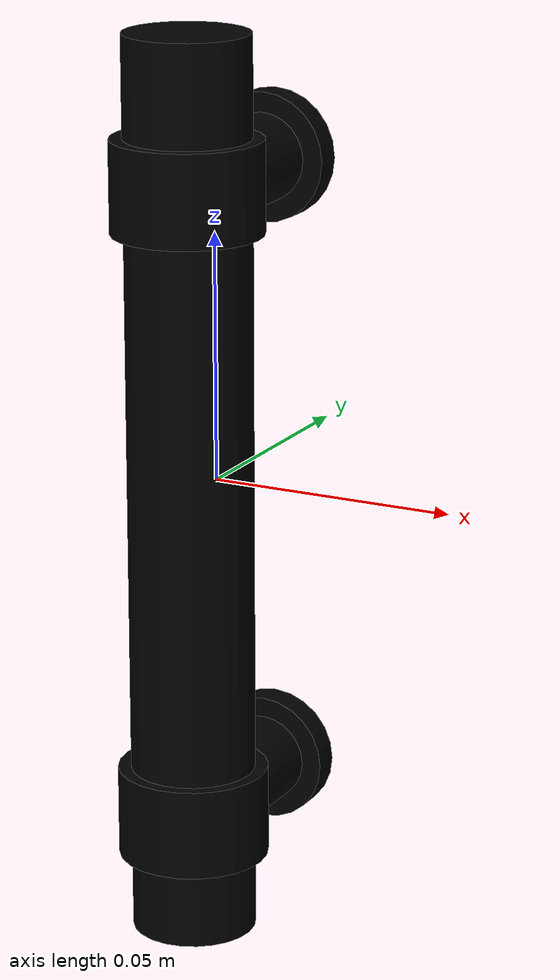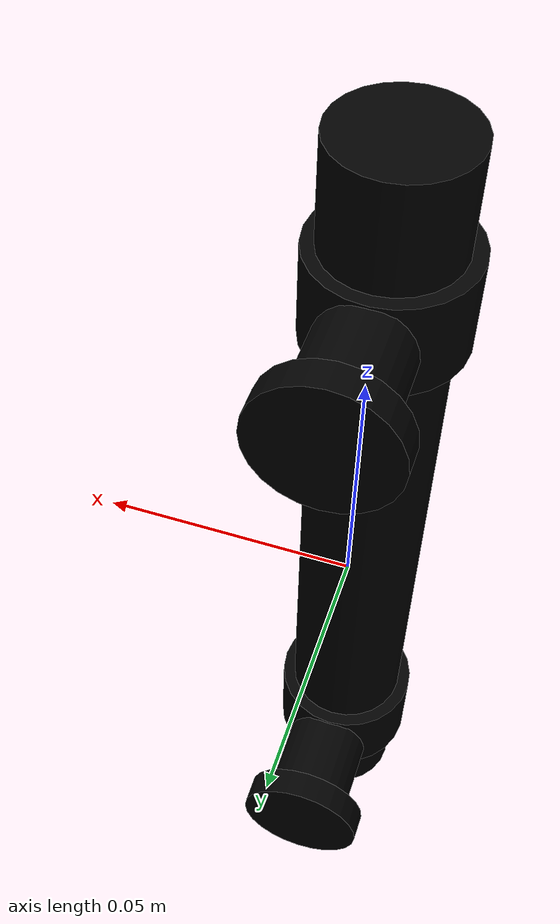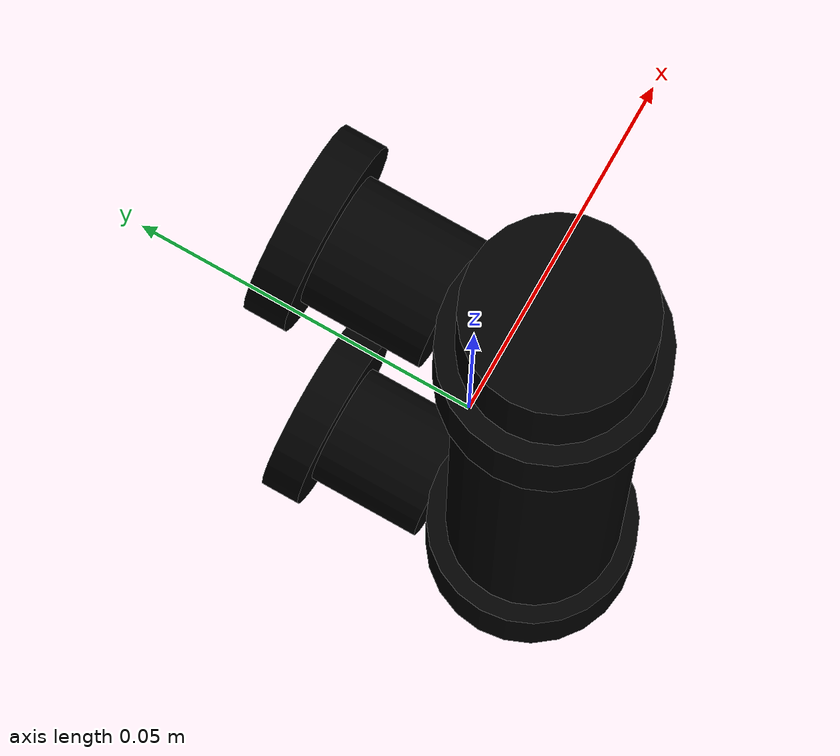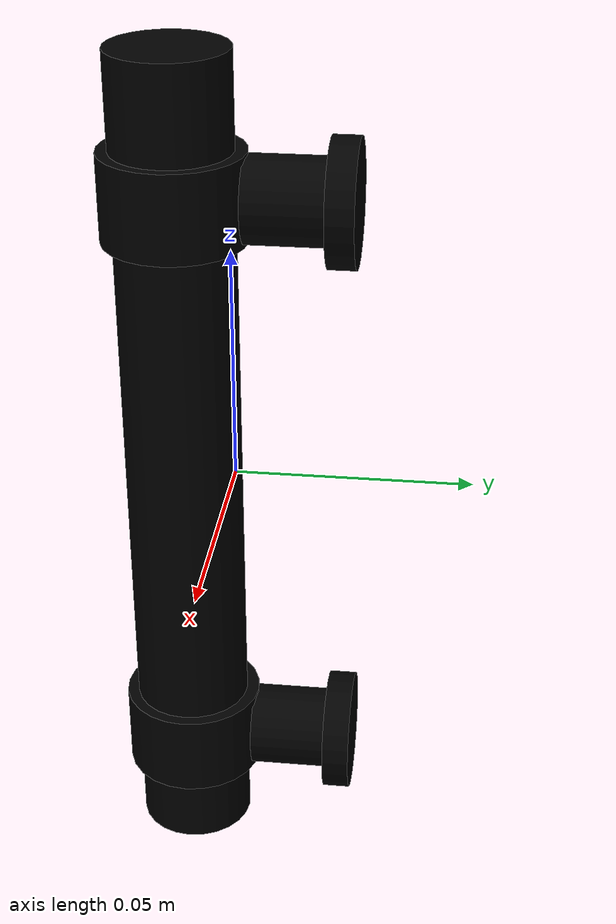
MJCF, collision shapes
<?xml version="1.0" ?>
<mujoco model="model">
    <compiler angle="radian"/>
    <asset>
        <mesh file="visuals/CabinetHandle019.obj" name="mesh"/>
        <texture file="visuals/T_BC001.png" name="tex" type="2d"/>
        <material name="mat" rgba="1 1 1 1.0" texture="tex" shininess="0.5" specular="0.5"/>
    </asset>
    <default>
        <default class="visual">
            <geom conaffinity="0" contype="0" group="1" type="mesh"/>
        </default>
        <default class="collision">
            <geom group="0" rgba="0 0 0 0"/>
        </default>
        <default class="spawn">
            <geom group="0" rgba="0 0 0 0" contype="0" conaffinity="0"/>
            <site group="0" rgba="0 0 0 0"/>
        </default>
    </default>
    <worldbody>
        <body>
            <body name="object">
                <geom mesh="mesh" type="mesh" solimp="0.998 0.998 0.001" solref="0.001 1" density="100" friction="0.95 0.3 0.1" class="visual" material="mat"/>
                <geom class="collision" type="cylinder" pos="0.0001500127254985273 -0.011070804670453072 3.872638990287669e-05" size="0.012377111241221428 0.0903298631310463" quat="1.0 0.0 0.0 0.0"/>
                <geom class="collision" type="cylinder" pos="-2.5203069526469335e-05 -0.01102266926318407 0.06118898466229439" size="0.014871686697006226 0.009155581705272198" quat="1.0 0.0 0.0 0.0"/>
                <geom class="collision" type="cylinder" pos="8.709750545676798e-05 -0.010966045781970024 -0.06546279042959213" size="0.014983605593442917 0.00911396462470293" quat="1.0 0.0 0.0 0.0"/>
                <geom class="collision" type="cylinder" pos="0.0001500127254985273 0.022698478773236275 0.060910098254680634" size="0.013053048402071 0.0028793602250516415" quat="0.7071067094802856 -0.7071068286895752 -1.5700929612083792e-16 -2.2148510003422914e-23" name="handle_connector"/>
                <geom class="collision" type="cylinder" pos="0.0001500127254985273 0.011739756911993027 0.06096480041742325" size="0.008922817185521126 0.00860213115811348" quat="0.7071067094802856 -0.7071068286895752 -1.5700929612083792e-16 -2.2148510003422914e-23"/>
                <geom class="collision" type="cylinder" pos="0.0001500127254985273 0.022698478773236275 -0.06590615212917328" size="0.013053048402071 0.0028793602250516415" quat="0.7071067094802856 -0.7071068286895752 -1.5700929612083792e-16 -2.2148510003422914e-23"/>
                <geom class="collision" type="cylinder" pos="0.0001500127254985273 0.011739756911993027 -0.06585144996643066" size="0.008922817185521126 0.00860213115811348" quat="0.7071067094802856 -0.7071068286895752 -1.5700929612083792e-16 -2.2148510003422914e-23"/>
            </body>
        </body>
    </worldbody>
    <actuator/>
</mujoco>
